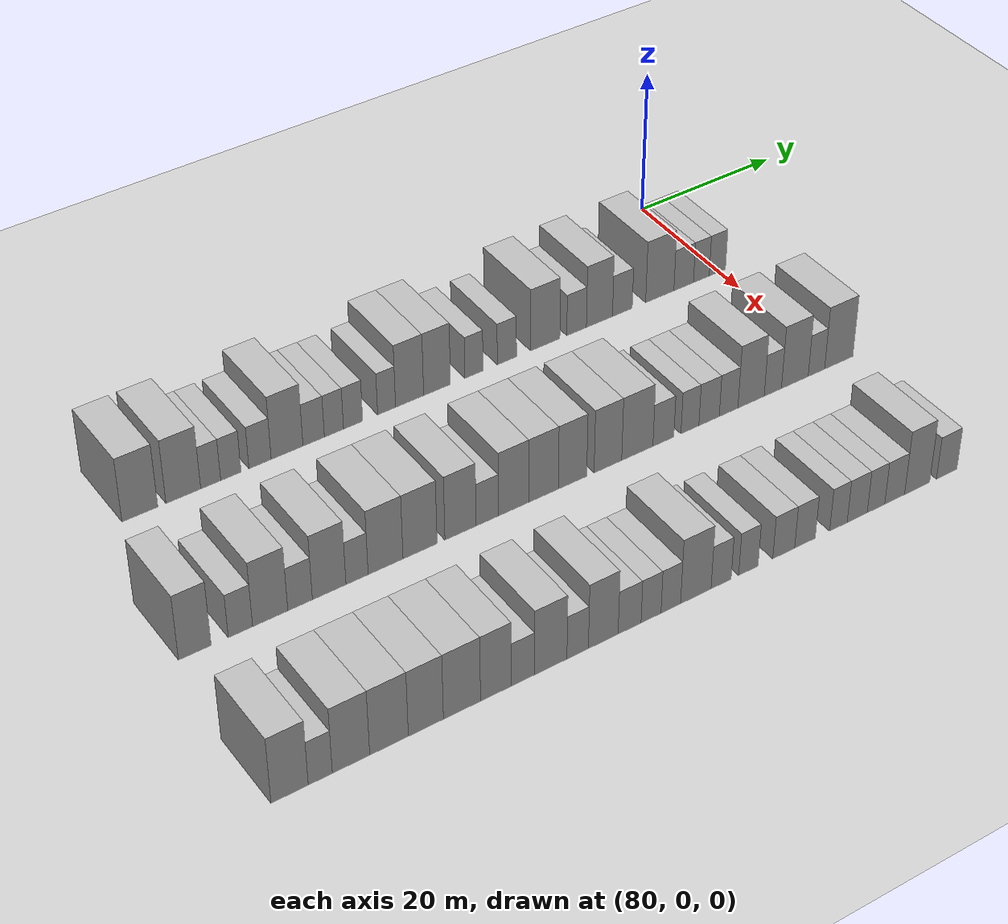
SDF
<sdf version="1.6">
 <world name="default">
  <include>
   <name>ground_plane_2</name>
   <uri>model://HANNAS_ground_plane</uri>
   <pose>100 0 0  0 0 0</pose>
  </include>
  <model name="building_653">
   <static>1</static>
   <pose>91.0000 -79.4389 0 0.000000 0.000000 0.000000</pose>
   <link name="link">
    <pose>0 0 4.50 0 0 0</pose>
    <collision name="collision"><geometry><box><size>10.0000 4.3589 9.0000</size></box></geometry></collision>
    <visual name="visual">
     <cast_shadows>0</cast_shadows>
     <geometry><box><size>10.0000 4.3589 9.0000</size></box></geometry>
     <material>
      <script>
       <uri>model://HANNAS_wall/materials/scripts</uri>
       <uri>model://HANNAS_wall/materials/textures</uri>
       <name>vrc/HANNAS_wall</name>
      </script>
     </material>
    </visual>
   </link>
  </model>
  <model name="building_654">
   <static>1</static>
   <pose>91.0000 -74.1063 0 0.000000 0.000000 0.000000</pose>
   <link name="link">
    <pose>0 0 4.50 0 0 0</pose>
    <collision name="collision"><geometry><box><size>10.0000 4.3062 9.0000</size></box></geometry></collision>
    <visual name="visual">
     <cast_shadows>0</cast_shadows>
     <geometry><box><size>10.0000 4.3062 9.0000</size></box></geometry>
     <material>
      <script>
       <uri>model://HANNAS_wall/materials/scripts</uri>
       <uri>model://HANNAS_wall/materials/textures</uri>
       <name>vrc/HANNAS_wall</name>
      </script>
     </material>
    </visual>
   </link>
  </model>
  <model name="building_655">
   <static>1</static>
   <pose>91.0000 -70.7050 0 0.000000 0.000000 0.000000</pose>
   <link name="link">
    <pose>0 0 3.00 0 0 0</pose>
    <collision name="collision"><geometry><box><size>10.0000 2.4964 6.0000</size></box></geometry></collision>
    <visual name="visual">
     <cast_shadows>0</cast_shadows>
     <geometry><box><size>10.0000 2.4964 6.0000</size></box></geometry>
     <material>
      <script>
       <uri>model://HANNAS_wall/materials/scripts</uri>
       <uri>model://HANNAS_wall/materials/textures</uri>
       <name>vrc/HANNAS_wall</name>
      </script>
     </material>
    </visual>
   </link>
  </model>
  <model name="building_656">
   <static>1</static>
   <pose>91.0000 -68.1744 0 0.000000 0.000000 0.000000</pose>
   <link name="link">
    <pose>0 0 3.00 0 0 0</pose>
    <collision name="collision"><geometry><box><size>10.0000 2.5649 6.0000</size></box></geometry></collision>
    <visual name="visual">
     <cast_shadows>0</cast_shadows>
     <geometry><box><size>10.0000 2.5649 6.0000</size></box></geometry>
     <material>
      <script>
       <uri>model://HANNAS_wall/materials/scripts</uri>
       <uri>model://HANNAS_wall/materials/textures</uri>
       <name>vrc/HANNAS_wall</name>
      </script>
     </material>
    </visual>
   </link>
  </model>
  <model name="building_657">
   <static>1</static>
   <pose>91.0000 -64.4742 0 0.000000 0.000000 0.000000</pose>
   <link name="link">
    <pose>0 0 3.00 0 0 0</pose>
    <collision name="collision"><geometry><box><size>10.0000 2.8355 6.0000</size></box></geometry></collision>
    <visual name="visual">
     <cast_shadows>0</cast_shadows>
     <geometry><box><size>10.0000 2.8355 6.0000</size></box></geometry>
     <material>
      <script>
       <uri>model://HANNAS_wall/materials/scripts</uri>
       <uri>model://HANNAS_wall/materials/textures</uri>
       <name>vrc/HANNAS_wall</name>
      </script>
     </material>
    </visual>
   </link>
  </model>
  <model name="building_658">
   <static>1</static>
   <pose>91.0000 -61.0054 0 0.000000 0.000000 0.000000</pose>
   <link name="link">
    <pose>0 0 4.50 0 0 0</pose>
    <collision name="collision"><geometry><box><size>10.0000 4.1021 9.0000</size></box></geometry></collision>
    <visual name="visual">
     <cast_shadows>0</cast_shadows>
     <geometry><box><size>10.0000 4.1021 9.0000</size></box></geometry>
     <material>
      <script>
       <uri>model://HANNAS_wall/materials/scripts</uri>
       <uri>model://HANNAS_wall/materials/textures</uri>
       <name>vrc/HANNAS_wall</name>
      </script>
     </material>
    </visual>
   </link>
  </model>
  <model name="building_659">
   <static>1</static>
   <pose>91.0000 -57.5598 0 0.000000 0.000000 0.000000</pose>
   <link name="link">
    <pose>0 0 3.00 0 0 0</pose>
    <collision name="collision"><geometry><box><size>10.0000 2.7892 6.0000</size></box></geometry></collision>
    <visual name="visual">
     <cast_shadows>0</cast_shadows>
     <geometry><box><size>10.0000 2.7892 6.0000</size></box></geometry>
     <material>
      <script>
       <uri>model://HANNAS_wall/materials/scripts</uri>
       <uri>model://HANNAS_wall/materials/textures</uri>
       <name>vrc/HANNAS_wall</name>
      </script>
     </material>
    </visual>
   </link>
  </model>
  <model name="building_660">
   <static>1</static>
   <pose>91.0000 -54.9086 0 0.000000 0.000000 0.000000</pose>
   <link name="link">
    <pose>0 0 3.00 0 0 0</pose>
    <collision name="collision"><geometry><box><size>10.0000 2.5132 6.0000</size></box></geometry></collision>
    <visual name="visual">
     <cast_shadows>0</cast_shadows>
     <geometry><box><size>10.0000 2.5132 6.0000</size></box></geometry>
     <material>
      <script>
       <uri>model://HANNAS_wall/materials/scripts</uri>
       <uri>model://HANNAS_wall/materials/textures</uri>
       <name>vrc/HANNAS_wall</name>
      </script>
     </material>
    </visual>
   </link>
  </model>
  <model name="building_661">
   <static>1</static>
   <pose>91.0000 -52.3867 0 0.000000 0.000000 0.000000</pose>
   <link name="link">
    <pose>0 0 3.00 0 0 0</pose>
    <collision name="collision"><geometry><box><size>10.0000 2.5305 6.0000</size></box></geometry></collision>
    <visual name="visual">
     <cast_shadows>0</cast_shadows>
     <geometry><box><size>10.0000 2.5305 6.0000</size></box></geometry>
     <material>
      <script>
       <uri>model://HANNAS_wall/materials/scripts</uri>
       <uri>model://HANNAS_wall/materials/textures</uri>
       <name>vrc/HANNAS_wall</name>
      </script>
     </material>
    </visual>
   </link>
  </model>
  <model name="building_662">
   <static>1</static>
   <pose>91.0000 -47.9176 0 0.000000 0.000000 0.000000</pose>
   <link name="link">
    <pose>0 0 3.00 0 0 0</pose>
    <collision name="collision"><geometry><box><size>10.0000 2.4077 6.0000</size></box></geometry></collision>
    <visual name="visual">
     <cast_shadows>0</cast_shadows>
     <geometry><box><size>10.0000 2.4077 6.0000</size></box></geometry>
     <material>
      <script>
       <uri>model://HANNAS_wall/materials/scripts</uri>
       <uri>model://HANNAS_wall/materials/textures</uri>
       <name>vrc/HANNAS_wall</name>
      </script>
     </material>
    </visual>
   </link>
  </model>
  <model name="building_663">
   <static>1</static>
   <pose>91.0000 -44.8125 0 0.000000 0.000000 0.000000</pose>
   <link name="link">
    <pose>0 0 4.50 0 0 0</pose>
    <collision name="collision"><geometry><box><size>10.0000 3.8024 9.0000</size></box></geometry></collision>
    <visual name="visual">
     <cast_shadows>0</cast_shadows>
     <geometry><box><size>10.0000 3.8024 9.0000</size></box></geometry>
     <material>
      <script>
       <uri>model://HANNAS_wall/materials/scripts</uri>
       <uri>model://HANNAS_wall/materials/textures</uri>
       <name>vrc/HANNAS_wall</name>
      </script>
     </material>
    </visual>
   </link>
  </model>
  <model name="building_664">
   <static>1</static>
   <pose>91.0000 -41.0761 0 0.000000 0.000000 0.000000</pose>
   <link name="link">
    <pose>0 0 4.50 0 0 0</pose>
    <collision name="collision"><geometry><box><size>10.0000 3.6705 9.0000</size></box></geometry></collision>
    <visual name="visual">
     <cast_shadows>0</cast_shadows>
     <geometry><box><size>10.0000 3.6705 9.0000</size></box></geometry>
     <material>
      <script>
       <uri>model://HANNAS_wall/materials/scripts</uri>
       <uri>model://HANNAS_wall/materials/textures</uri>
       <name>vrc/HANNAS_wall</name>
      </script>
     </material>
    </visual>
   </link>
  </model>
  <model name="building_665">
   <static>1</static>
   <pose>91.0000 -35.9853 0 0.000000 0.000000 0.000000</pose>
   <link name="link">
    <pose>0 0 3.00 0 0 0</pose>
    <collision name="collision"><geometry><box><size>10.0000 2.5110 6.0000</size></box></geometry></collision>
    <visual name="visual">
     <cast_shadows>0</cast_shadows>
     <geometry><box><size>10.0000 2.5110 6.0000</size></box></geometry>
     <material>
      <script>
       <uri>model://HANNAS_wall/materials/scripts</uri>
       <uri>model://HANNAS_wall/materials/textures</uri>
       <name>vrc/HANNAS_wall</name>
      </script>
     </material>
    </visual>
   </link>
  </model>
  <model name="building_666">
   <static>1</static>
   <pose>91.0000 -31.3787 0 0.000000 0.000000 0.000000</pose>
   <link name="link">
    <pose>0 0 3.00 0 0 0</pose>
    <collision name="collision"><geometry><box><size>10.0000 2.7020 6.0000</size></box></geometry></collision>
    <visual name="visual">
     <cast_shadows>0</cast_shadows>
     <geometry><box><size>10.0000 2.7020 6.0000</size></box></geometry>
     <material>
      <script>
       <uri>model://HANNAS_wall/materials/scripts</uri>
       <uri>model://HANNAS_wall/materials/textures</uri>
       <name>vrc/HANNAS_wall</name>
      </script>
     </material>
    </visual>
   </link>
  </model>
  <model name="building_667">
   <static>1</static>
   <pose>91.0000 -25.9276 0 0.000000 0.000000 0.000000</pose>
   <link name="link">
    <pose>0 0 4.50 0 0 0</pose>
    <collision name="collision"><geometry><box><size>10.0000 4.2004 9.0000</size></box></geometry></collision>
    <visual name="visual">
     <cast_shadows>0</cast_shadows>
     <geometry><box><size>10.0000 4.2004 9.0000</size></box></geometry>
     <material>
      <script>
       <uri>model://HANNAS_wall/materials/scripts</uri>
       <uri>model://HANNAS_wall/materials/textures</uri>
       <name>vrc/HANNAS_wall</name>
      </script>
     </material>
    </visual>
   </link>
  </model>
  <model name="building_668">
   <static>1</static>
   <pose>91.0000 -21.4055 0 0.000000 0.000000 0.000000</pose>
   <link name="link">
    <pose>0 0 3.00 0 0 0</pose>
    <collision name="collision"><geometry><box><size>10.0000 2.8437 6.0000</size></box></geometry></collision>
    <visual name="visual">
     <cast_shadows>0</cast_shadows>
     <geometry><box><size>10.0000 2.8437 6.0000</size></box></geometry>
     <material>
      <script>
       <uri>model://HANNAS_wall/materials/scripts</uri>
       <uri>model://HANNAS_wall/materials/textures</uri>
       <name>vrc/HANNAS_wall</name>
      </script>
     </material>
    </visual>
   </link>
  </model>
  <model name="building_669">
   <static>1</static>
   <pose>91.0000 -18.0693 0 0.000000 0.000000 0.000000</pose>
   <link name="link">
    <pose>0 0 4.50 0 0 0</pose>
    <collision name="collision"><geometry><box><size>10.0000 3.8287 9.0000</size></box></geometry></collision>
    <visual name="visual">
     <cast_shadows>0</cast_shadows>
     <geometry><box><size>10.0000 3.8287 9.0000</size></box></geometry>
     <material>
      <script>
       <uri>model://HANNAS_wall/materials/scripts</uri>
       <uri>model://HANNAS_wall/materials/textures</uri>
       <name>vrc/HANNAS_wall</name>
      </script>
     </material>
    </visual>
   </link>
  </model>
  <model name="building_670">
   <static>1</static>
   <pose>91.0000 -14.6945 0 0.000000 0.000000 0.000000</pose>
   <link name="link">
    <pose>0 0 3.00 0 0 0</pose>
    <collision name="collision"><geometry><box><size>10.0000 2.9210 6.0000</size></box></geometry></collision>
    <visual name="visual">
     <cast_shadows>0</cast_shadows>
     <geometry><box><size>10.0000 2.9210 6.0000</size></box></geometry>
     <material>
      <script>
       <uri>model://HANNAS_wall/materials/scripts</uri>
       <uri>model://HANNAS_wall/materials/textures</uri>
       <name>vrc/HANNAS_wall</name>
      </script>
     </material>
    </visual>
   </link>
  </model>
  <model name="building_671">
   <static>1</static>
   <pose>91.0000 -9.1080 0 0.000000 0.000000 0.000000</pose>
   <link name="link">
    <pose>0 0 4.50 0 0 0</pose>
    <collision name="collision"><geometry><box><size>10.0000 4.2520 9.0000</size></box></geometry></collision>
    <visual name="visual">
     <cast_shadows>0</cast_shadows>
     <geometry><box><size>10.0000 4.2520 9.0000</size></box></geometry>
     <material>
      <script>
       <uri>model://HANNAS_wall/materials/scripts</uri>
       <uri>model://HANNAS_wall/materials/textures</uri>
       <name>vrc/HANNAS_wall</name>
      </script>
     </material>
    </visual>
   </link>
  </model>
  <model name="building_672">
   <static>1</static>
   <pose>91.0000 -5.4977 0 0.000000 0.000000 0.000000</pose>
   <link name="link">
    <pose>0 0 3.00 0 0 0</pose>
    <collision name="collision"><geometry><box><size>10.0000 2.9686 6.0000</size></box></geometry></collision>
    <visual name="visual">
     <cast_shadows>0</cast_shadows>
     <geometry><box><size>10.0000 2.9686 6.0000</size></box></geometry>
     <material>
      <script>
       <uri>model://HANNAS_wall/materials/scripts</uri>
       <uri>model://HANNAS_wall/materials/textures</uri>
       <name>vrc/HANNAS_wall</name>
      </script>
     </material>
    </visual>
   </link>
  </model>
  <model name="building_673">
   <static>1</static>
   <pose>91.0000 -2.8036 0 0.000000 0.000000 0.000000</pose>
   <link name="link">
    <pose>0 0 3.00 0 0 0</pose>
    <collision name="collision"><geometry><box><size>10.0000 2.4197 6.0000</size></box></geometry></collision>
    <visual name="visual">
     <cast_shadows>0</cast_shadows>
     <geometry><box><size>10.0000 2.4197 6.0000</size></box></geometry>
     <material>
      <script>
       <uri>model://HANNAS_wall/materials/scripts</uri>
       <uri>model://HANNAS_wall/materials/textures</uri>
       <name>vrc/HANNAS_wall</name>
      </script>
     </material>
    </visual>
   </link>
  </model>
  <model name="building_674">
   <static>1</static>
   <pose>91.0000 -0.3408 0 0.000000 0.000000 0.000000</pose>
   <link name="link">
    <pose>0 0 3.00 0 0 0</pose>
    <collision name="collision"><geometry><box><size>10.0000 2.5057 6.0000</size></box></geometry></collision>
    <visual name="visual">
     <cast_shadows>0</cast_shadows>
     <geometry><box><size>10.0000 2.5057 6.0000</size></box></geometry>
     <material>
      <script>
       <uri>model://HANNAS_wall/materials/scripts</uri>
       <uri>model://HANNAS_wall/materials/textures</uri>
       <name>vrc/HANNAS_wall</name>
      </script>
     </material>
    </visual>
   </link>
  </model>
  <model name="building_834">
   <static>1</static>
   <pose>113.0000 -84.4279 0 0.000000 0.000000 0.000000</pose>
   <link name="link">
    <pose>0 0 4.50 0 0 0</pose>
    <collision name="collision"><geometry><box><size>10.0000 3.7770 9.0000</size></box></geometry></collision>
    <visual name="visual">
     <cast_shadows>0</cast_shadows>
     <geometry><box><size>10.0000 3.7770 9.0000</size></box></geometry>
     <material>
      <script>
       <uri>model://HANNAS_wall/materials/scripts</uri>
       <uri>model://HANNAS_wall/materials/textures</uri>
       <name>vrc/HANNAS_wall</name>
      </script>
     </material>
    </visual>
   </link>
  </model>
  <model name="building_835">
   <static>1</static>
   <pose>113.0000 -79.1073 0 0.000000 0.000000 0.000000</pose>
   <link name="link">
    <pose>0 0 3.00 0 0 0</pose>
    <collision name="collision"><geometry><box><size>10.0000 2.8643 6.0000</size></box></geometry></collision>
    <visual name="visual">
     <cast_shadows>0</cast_shadows>
     <geometry><box><size>10.0000 2.8643 6.0000</size></box></geometry>
     <material>
      <script>
       <uri>model://HANNAS_wall/materials/scripts</uri>
       <uri>model://HANNAS_wall/materials/textures</uri>
       <name>vrc/HANNAS_wall</name>
      </script>
     </material>
    </visual>
   </link>
  </model>
  <model name="building_836">
   <static>1</static>
   <pose>113.0000 -75.5823 0 0.000000 0.000000 0.000000</pose>
   <link name="link">
    <pose>0 0 4.50 0 0 0</pose>
    <collision name="collision"><geometry><box><size>10.0000 4.1857 9.0000</size></box></geometry></collision>
    <visual name="visual">
     <cast_shadows>0</cast_shadows>
     <geometry><box><size>10.0000 4.1857 9.0000</size></box></geometry>
     <material>
      <script>
       <uri>model://HANNAS_wall/materials/scripts</uri>
       <uri>model://HANNAS_wall/materials/textures</uri>
       <name>vrc/HANNAS_wall</name>
      </script>
     </material>
    </visual>
   </link>
  </model>
  <model name="building_837">
   <static>1</static>
   <pose>113.0000 -72.0076 0 0.000000 0.000000 0.000000</pose>
   <link name="link">
    <pose>0 0 3.00 0 0 0</pose>
    <collision name="collision"><geometry><box><size>10.0000 2.9637 6.0000</size></box></geometry></collision>
    <visual name="visual">
     <cast_shadows>0</cast_shadows>
     <geometry><box><size>10.0000 2.9637 6.0000</size></box></geometry>
     <material>
      <script>
       <uri>model://HANNAS_wall/materials/scripts</uri>
       <uri>model://HANNAS_wall/materials/textures</uri>
       <name>vrc/HANNAS_wall</name>
      </script>
     </material>
    </visual>
   </link>
  </model>
  <model name="building_838">
   <static>1</static>
   <pose>113.0000 -68.4787 0 0.000000 0.000000 0.000000</pose>
   <link name="link">
    <pose>0 0 4.50 0 0 0</pose>
    <collision name="collision"><geometry><box><size>10.0000 4.0940 9.0000</size></box></geometry></collision>
    <visual name="visual">
     <cast_shadows>0</cast_shadows>
     <geometry><box><size>10.0000 4.0940 9.0000</size></box></geometry>
     <material>
      <script>
       <uri>model://HANNAS_wall/materials/scripts</uri>
       <uri>model://HANNAS_wall/materials/textures</uri>
       <name>vrc/HANNAS_wall</name>
      </script>
     </material>
    </visual>
   </link>
  </model>
  <model name="building_839">
   <static>1</static>
   <pose>113.0000 -65.0657 0 0.000000 0.000000 0.000000</pose>
   <link name="link">
    <pose>0 0 3.00 0 0 0</pose>
    <collision name="collision"><geometry><box><size>10.0000 2.7322 6.0000</size></box></geometry></collision>
    <visual name="visual">
     <cast_shadows>0</cast_shadows>
     <geometry><box><size>10.0000 2.7322 6.0000</size></box></geometry>
     <material>
      <script>
       <uri>model://HANNAS_wall/materials/scripts</uri>
       <uri>model://HANNAS_wall/materials/textures</uri>
       <name>vrc/HANNAS_wall</name>
      </script>
     </material>
    </visual>
   </link>
  </model>
  <model name="building_840">
   <static>1</static>
   <pose>113.0000 -61.5240 0 0.000000 0.000000 0.000000</pose>
   <link name="link">
    <pose>0 0 4.50 0 0 0</pose>
    <collision name="collision"><geometry><box><size>10.0000 4.3511 9.0000</size></box></geometry></collision>
    <visual name="visual">
     <cast_shadows>0</cast_shadows>
     <geometry><box><size>10.0000 4.3511 9.0000</size></box></geometry>
     <material>
      <script>
       <uri>model://HANNAS_wall/materials/scripts</uri>
       <uri>model://HANNAS_wall/materials/textures</uri>
       <name>vrc/HANNAS_wall</name>
      </script>
     </material>
    </visual>
   </link>
  </model>
  <model name="building_841">
   <static>1</static>
   <pose>113.0000 -57.1948 0 0.000000 0.000000 0.000000</pose>
   <link name="link">
    <pose>0 0 4.50 0 0 0</pose>
    <collision name="collision"><geometry><box><size>10.0000 4.3075 9.0000</size></box></geometry></collision>
    <visual name="visual">
     <cast_shadows>0</cast_shadows>
     <geometry><box><size>10.0000 4.3075 9.0000</size></box></geometry>
     <material>
      <script>
       <uri>model://HANNAS_wall/materials/scripts</uri>
       <uri>model://HANNAS_wall/materials/textures</uri>
       <name>vrc/HANNAS_wall</name>
      </script>
     </material>
    </visual>
   </link>
  </model>
  <model name="building_842">
   <static>1</static>
   <pose>113.0000 -52.0373 0 0.000000 0.000000 0.000000</pose>
   <link name="link">
    <pose>0 0 4.50 0 0 0</pose>
    <collision name="collision"><geometry><box><size>10.0000 4.0074 9.0000</size></box></geometry></collision>
    <visual name="visual">
     <cast_shadows>0</cast_shadows>
     <geometry><box><size>10.0000 4.0074 9.0000</size></box></geometry>
     <material>
      <script>
       <uri>model://HANNAS_wall/materials/scripts</uri>
       <uri>model://HANNAS_wall/materials/textures</uri>
       <name>vrc/HANNAS_wall</name>
      </script>
     </material>
    </visual>
   </link>
  </model>
  <model name="building_843">
   <static>1</static>
   <pose>113.0000 -48.5741 0 0.000000 0.000000 0.000000</pose>
   <link name="link">
    <pose>0 0 3.00 0 0 0</pose>
    <collision name="collision"><geometry><box><size>10.0000 2.9190 6.0000</size></box></geometry></collision>
    <visual name="visual">
     <cast_shadows>0</cast_shadows>
     <geometry><box><size>10.0000 2.9190 6.0000</size></box></geometry>
     <material>
      <script>
       <uri>model://HANNAS_wall/materials/scripts</uri>
       <uri>model://HANNAS_wall/materials/textures</uri>
       <name>vrc/HANNAS_wall</name>
      </script>
     </material>
    </visual>
   </link>
  </model>
  <model name="building_844">
   <static>1</static>
   <pose>113.0000 -45.1214 0 0.000000 0.000000 0.000000</pose>
   <link name="link">
    <pose>0 0 4.50 0 0 0</pose>
    <collision name="collision"><geometry><box><size>10.0000 3.9864 9.0000</size></box></geometry></collision>
    <visual name="visual">
     <cast_shadows>0</cast_shadows>
     <geometry><box><size>10.0000 3.9864 9.0000</size></box></geometry>
     <material>
      <script>
       <uri>model://HANNAS_wall/materials/scripts</uri>
       <uri>model://HANNAS_wall/materials/textures</uri>
       <name>vrc/HANNAS_wall</name>
      </script>
     </material>
    </visual>
   </link>
  </model>
  <model name="building_845">
   <static>1</static>
   <pose>113.0000 -41.1678 0 0.000000 0.000000 0.000000</pose>
   <link name="link">
    <pose>0 0 4.50 0 0 0</pose>
    <collision name="collision"><geometry><box><size>10.0000 3.9206 9.0000</size></box></geometry></collision>
    <visual name="visual">
     <cast_shadows>0</cast_shadows>
     <geometry><box><size>10.0000 3.9206 9.0000</size></box></geometry>
     <material>
      <script>
       <uri>model://HANNAS_wall/materials/scripts</uri>
       <uri>model://HANNAS_wall/materials/textures</uri>
       <name>vrc/HANNAS_wall</name>
      </script>
     </material>
    </visual>
   </link>
  </model>
  <model name="building_846">
   <static>1</static>
   <pose>113.0000 -37.2967 0 0.000000 0.000000 0.000000</pose>
   <link name="link">
    <pose>0 0 4.50 0 0 0</pose>
    <collision name="collision"><geometry><box><size>10.0000 3.8217 9.0000</size></box></geometry></collision>
    <visual name="visual">
     <cast_shadows>0</cast_shadows>
     <geometry><box><size>10.0000 3.8217 9.0000</size></box></geometry>
     <material>
      <script>
       <uri>model://HANNAS_wall/materials/scripts</uri>
       <uri>model://HANNAS_wall/materials/textures</uri>
       <name>vrc/HANNAS_wall</name>
      </script>
     </material>
    </visual>
   </link>
  </model>
  <model name="building_847">
   <static>1</static>
   <pose>113.0000 -32.4959 0 0.000000 0.000000 0.000000</pose>
   <link name="link">
    <pose>0 0 4.50 0 0 0</pose>
    <collision name="collision"><geometry><box><size>10.0000 3.7797 9.0000</size></box></geometry></collision>
    <visual name="visual">
     <cast_shadows>0</cast_shadows>
     <geometry><box><size>10.0000 3.7797 9.0000</size></box></geometry>
     <material>
      <script>
       <uri>model://HANNAS_wall/materials/scripts</uri>
       <uri>model://HANNAS_wall/materials/textures</uri>
       <name>vrc/HANNAS_wall</name>
      </script>
     </material>
    </visual>
   </link>
  </model>
  <model name="building_848">
   <static>1</static>
   <pose>113.0000 -28.4434 0 0.000000 0.000000 0.000000</pose>
   <link name="link">
    <pose>0 0 4.50 0 0 0</pose>
    <collision name="collision"><geometry><box><size>10.0000 4.3253 9.0000</size></box></geometry></collision>
    <visual name="visual">
     <cast_shadows>0</cast_shadows>
     <geometry><box><size>10.0000 4.3253 9.0000</size></box></geometry>
     <material>
      <script>
       <uri>model://HANNAS_wall/materials/scripts</uri>
       <uri>model://HANNAS_wall/materials/textures</uri>
       <name>vrc/HANNAS_wall</name>
      </script>
     </material>
    </visual>
   </link>
  </model>
  <model name="building_849">
   <static>1</static>
   <pose>113.0000 -24.8127 0 0.000000 0.000000 0.000000</pose>
   <link name="link">
    <pose>0 0 3.00 0 0 0</pose>
    <collision name="collision"><geometry><box><size>10.0000 2.9361 6.0000</size></box></geometry></collision>
    <visual name="visual">
     <cast_shadows>0</cast_shadows>
     <geometry><box><size>10.0000 2.9361 6.0000</size></box></geometry>
     <material>
      <script>
       <uri>model://HANNAS_wall/materials/scripts</uri>
       <uri>model://HANNAS_wall/materials/textures</uri>
       <name>vrc/HANNAS_wall</name>
      </script>
     </material>
    </visual>
   </link>
  </model>
  <model name="building_850">
   <static>1</static>
   <pose>113.0000 -21.0738 0 0.000000 0.000000 0.000000</pose>
   <link name="link">
    <pose>0 0 3.00 0 0 0</pose>
    <collision name="collision"><geometry><box><size>10.0000 2.5419 6.0000</size></box></geometry></collision>
    <visual name="visual">
     <cast_shadows>0</cast_shadows>
     <geometry><box><size>10.0000 2.5419 6.0000</size></box></geometry>
     <material>
      <script>
       <uri>model://HANNAS_wall/materials/scripts</uri>
       <uri>model://HANNAS_wall/materials/textures</uri>
       <name>vrc/HANNAS_wall</name>
      </script>
     </material>
    </visual>
   </link>
  </model>
  <model name="building_851">
   <static>1</static>
   <pose>113.0000 -18.3464 0 0.000000 0.000000 0.000000</pose>
   <link name="link">
    <pose>0 0 3.00 0 0 0</pose>
    <collision name="collision"><geometry><box><size>10.0000 2.9127 6.0000</size></box></geometry></collision>
    <visual name="visual">
     <cast_shadows>0</cast_shadows>
     <geometry><box><size>10.0000 2.9127 6.0000</size></box></geometry>
     <material>
      <script>
       <uri>model://HANNAS_wall/materials/scripts</uri>
       <uri>model://HANNAS_wall/materials/textures</uri>
       <name>vrc/HANNAS_wall</name>
      </script>
     </material>
    </visual>
   </link>
  </model>
  <model name="building_852">
   <static>1</static>
   <pose>113.0000 -15.5474 0 0.000000 0.000000 0.000000</pose>
   <link name="link">
    <pose>0 0 3.00 0 0 0</pose>
    <collision name="collision"><geometry><box><size>10.0000 2.6853 6.0000</size></box></geometry></collision>
    <visual name="visual">
     <cast_shadows>0</cast_shadows>
     <geometry><box><size>10.0000 2.6853 6.0000</size></box></geometry>
     <material>
      <script>
       <uri>model://HANNAS_wall/materials/scripts</uri>
       <uri>model://HANNAS_wall/materials/textures</uri>
       <name>vrc/HANNAS_wall</name>
      </script>
     </material>
    </visual>
   </link>
  </model>
  <model name="building_853">
   <static>1</static>
   <pose>113.0000 -12.2888 0 0.000000 0.000000 0.000000</pose>
   <link name="link">
    <pose>0 0 4.50 0 0 0</pose>
    <collision name="collision"><geometry><box><size>10.0000 3.8318 9.0000</size></box></geometry></collision>
    <visual name="visual">
     <cast_shadows>0</cast_shadows>
     <geometry><box><size>10.0000 3.8318 9.0000</size></box></geometry>
     <material>
      <script>
       <uri>model://HANNAS_wall/materials/scripts</uri>
       <uri>model://HANNAS_wall/materials/textures</uri>
       <name>vrc/HANNAS_wall</name>
      </script>
     </material>
    </visual>
   </link>
  </model>
  <model name="building_854">
   <static>1</static>
   <pose>113.0000 -9.1088 0 0.000000 0.000000 0.000000</pose>
   <link name="link">
    <pose>0 0 3.00 0 0 0</pose>
    <collision name="collision"><geometry><box><size>10.0000 2.5282 6.0000</size></box></geometry></collision>
    <visual name="visual">
     <cast_shadows>0</cast_shadows>
     <geometry><box><size>10.0000 2.5282 6.0000</size></box></geometry>
     <material>
      <script>
       <uri>model://HANNAS_wall/materials/scripts</uri>
       <uri>model://HANNAS_wall/materials/textures</uri>
       <name>vrc/HANNAS_wall</name>
      </script>
     </material>
    </visual>
   </link>
  </model>
  <model name="building_855">
   <static>1</static>
   <pose>113.0000 -5.8590 0 0.000000 0.000000 0.000000</pose>
   <link name="link">
    <pose>0 0 4.50 0 0 0</pose>
    <collision name="collision"><geometry><box><size>10.0000 3.9715 9.0000</size></box></geometry></collision>
    <visual name="visual">
     <cast_shadows>0</cast_shadows>
     <geometry><box><size>10.0000 3.9715 9.0000</size></box></geometry>
     <material>
      <script>
       <uri>model://HANNAS_wall/materials/scripts</uri>
       <uri>model://HANNAS_wall/materials/textures</uri>
       <name>vrc/HANNAS_wall</name>
      </script>
     </material>
    </visual>
   </link>
  </model>
  <model name="building_856">
   <static>1</static>
   <pose>113.0000 -2.6428 0 0.000000 0.000000 0.000000</pose>
   <link name="link">
    <pose>0 0 3.00 0 0 0</pose>
    <collision name="collision"><geometry><box><size>10.0000 2.4609 6.0000</size></box></geometry></collision>
    <visual name="visual">
     <cast_shadows>0</cast_shadows>
     <geometry><box><size>10.0000 2.4609 6.0000</size></box></geometry>
     <material>
      <script>
       <uri>model://HANNAS_wall/materials/scripts</uri>
       <uri>model://HANNAS_wall/materials/textures</uri>
       <name>vrc/HANNAS_wall</name>
      </script>
     </material>
    </visual>
   </link>
  </model>
  <model name="building_857">
   <static>1</static>
   <pose>113.0000 0.7224 0 0.000000 0.000000 0.000000</pose>
   <link name="link">
    <pose>0 0 4.50 0 0 0</pose>
    <collision name="collision"><geometry><box><size>10.0000 4.2695 9.0000</size></box></geometry></collision>
    <visual name="visual">
     <cast_shadows>0</cast_shadows>
     <geometry><box><size>10.0000 4.2695 9.0000</size></box></geometry>
     <material>
      <script>
       <uri>model://HANNAS_wall/materials/scripts</uri>
       <uri>model://HANNAS_wall/materials/textures</uri>
       <name>vrc/HANNAS_wall</name>
      </script>
     </material>
    </visual>
   </link>
  </model>
  <model name="building_1032">
   <static>1</static>
   <pose>135.0000 -85.8491 0 0.000000 0.000000 0.000000</pose>
   <link name="link">
    <pose>0 0 4.50 0 0 0</pose>
    <collision name="collision"><geometry><box><size>10.0000 4.1418 9.0000</size></box></geometry></collision>
    <visual name="visual">
     <cast_shadows>0</cast_shadows>
     <geometry><box><size>10.0000 4.1418 9.0000</size></box></geometry>
     <material>
      <script>
       <uri>model://HANNAS_wall/materials/scripts</uri>
       <uri>model://HANNAS_wall/materials/textures</uri>
       <name>vrc/HANNAS_wall</name>
      </script>
     </material>
    </visual>
   </link>
  </model>
  <model name="building_1033">
   <static>1</static>
   <pose>135.0000 -82.4266 0 0.000000 0.000000 0.000000</pose>
   <link name="link">
    <pose>0 0 3.00 0 0 0</pose>
    <collision name="collision"><geometry><box><size>10.0000 2.7033 6.0000</size></box></geometry></collision>
    <visual name="visual">
     <cast_shadows>0</cast_shadows>
     <geometry><box><size>10.0000 2.7033 6.0000</size></box></geometry>
     <material>
      <script>
       <uri>model://HANNAS_wall/materials/scripts</uri>
       <uri>model://HANNAS_wall/materials/textures</uri>
       <name>vrc/HANNAS_wall</name>
      </script>
     </material>
    </visual>
   </link>
  </model>
  <model name="building_1034">
   <static>1</static>
   <pose>135.0000 -78.9526 0 0.000000 0.000000 0.000000</pose>
   <link name="link">
    <pose>0 0 4.50 0 0 0</pose>
    <collision name="collision"><geometry><box><size>10.0000 4.2447 9.0000</size></box></geometry></collision>
    <visual name="visual">
     <cast_shadows>0</cast_shadows>
     <geometry><box><size>10.0000 4.2447 9.0000</size></box></geometry>
     <material>
      <script>
       <uri>model://HANNAS_wall/materials/scripts</uri>
       <uri>model://HANNAS_wall/materials/textures</uri>
       <name>vrc/HANNAS_wall</name>
      </script>
     </material>
    </visual>
   </link>
  </model>
  <model name="building_1035">
   <static>1</static>
   <pose>135.0000 -74.5987 0 0.000000 0.000000 0.000000</pose>
   <link name="link">
    <pose>0 0 4.50 0 0 0</pose>
    <collision name="collision"><geometry><box><size>10.0000 4.4632 9.0000</size></box></geometry></collision>
    <visual name="visual">
     <cast_shadows>0</cast_shadows>
     <geometry><box><size>10.0000 4.4632 9.0000</size></box></geometry>
     <material>
      <script>
       <uri>model://HANNAS_wall/materials/scripts</uri>
       <uri>model://HANNAS_wall/materials/textures</uri>
       <name>vrc/HANNAS_wall</name>
      </script>
     </material>
    </visual>
   </link>
  </model>
  <model name="building_1036">
   <static>1</static>
   <pose>135.0000 -70.3127 0 0.000000 0.000000 0.000000</pose>
   <link name="link">
    <pose>0 0 4.50 0 0 0</pose>
    <collision name="collision"><geometry><box><size>10.0000 4.1087 9.0000</size></box></geometry></collision>
    <visual name="visual">
     <cast_shadows>0</cast_shadows>
     <geometry><box><size>10.0000 4.1087 9.0000</size></box></geometry>
     <material>
      <script>
       <uri>model://HANNAS_wall/materials/scripts</uri>
       <uri>model://HANNAS_wall/materials/textures</uri>
       <name>vrc/HANNAS_wall</name>
      </script>
     </material>
    </visual>
   </link>
  </model>
  <model name="building_1037">
   <static>1</static>
   <pose>135.0000 -66.0519 0 0.000000 0.000000 0.000000</pose>
   <link name="link">
    <pose>0 0 4.50 0 0 0</pose>
    <collision name="collision"><geometry><box><size>10.0000 4.4128 9.0000</size></box></geometry></collision>
    <visual name="visual">
     <cast_shadows>0</cast_shadows>
     <geometry><box><size>10.0000 4.4128 9.0000</size></box></geometry>
     <material>
      <script>
       <uri>model://HANNAS_wall/materials/scripts</uri>
       <uri>model://HANNAS_wall/materials/textures</uri>
       <name>vrc/HANNAS_wall</name>
      </script>
     </material>
    </visual>
   </link>
  </model>
  <model name="building_1038">
   <static>1</static>
   <pose>135.0000 -61.9863 0 0.000000 0.000000 0.000000</pose>
   <link name="link">
    <pose>0 0 4.50 0 0 0</pose>
    <collision name="collision"><geometry><box><size>10.0000 3.7184 9.0000</size></box></geometry></collision>
    <visual name="visual">
     <cast_shadows>0</cast_shadows>
     <geometry><box><size>10.0000 3.7184 9.0000</size></box></geometry>
     <material>
      <script>
       <uri>model://HANNAS_wall/materials/scripts</uri>
       <uri>model://HANNAS_wall/materials/textures</uri>
       <name>vrc/HANNAS_wall</name>
      </script>
     </material>
    </visual>
   </link>
  </model>
  <model name="building_1039">
   <static>1</static>
   <pose>135.0000 -58.7145 0 0.000000 0.000000 0.000000</pose>
   <link name="link">
    <pose>0 0 3.00 0 0 0</pose>
    <collision name="collision"><geometry><box><size>10.0000 2.8253 6.0000</size></box></geometry></collision>
    <visual name="visual">
     <cast_shadows>0</cast_shadows>
     <geometry><box><size>10.0000 2.8253 6.0000</size></box></geometry>
     <material>
      <script>
       <uri>model://HANNAS_wall/materials/scripts</uri>
       <uri>model://HANNAS_wall/materials/textures</uri>
       <name>vrc/HANNAS_wall</name>
      </script>
     </material>
    </visual>
   </link>
  </model>
  <model name="building_1040">
   <static>1</static>
   <pose>135.0000 -55.3021 0 0.000000 0.000000 0.000000</pose>
   <link name="link">
    <pose>0 0 4.50 0 0 0</pose>
    <collision name="collision"><geometry><box><size>10.0000 3.9994 9.0000</size></box></geometry></collision>
    <visual name="visual">
     <cast_shadows>0</cast_shadows>
     <geometry><box><size>10.0000 3.9994 9.0000</size></box></geometry>
     <material>
      <script>
       <uri>model://HANNAS_wall/materials/scripts</uri>
       <uri>model://HANNAS_wall/materials/textures</uri>
       <name>vrc/HANNAS_wall</name>
      </script>
     </material>
    </visual>
   </link>
  </model>
  <model name="building_1041">
   <static>1</static>
   <pose>135.0000 -51.9619 0 0.000000 0.000000 0.000000</pose>
   <link name="link">
    <pose>0 0 3.00 0 0 0</pose>
    <collision name="collision"><geometry><box><size>10.0000 2.6809 6.0000</size></box></geometry></collision>
    <visual name="visual">
     <cast_shadows>0</cast_shadows>
     <geometry><box><size>10.0000 2.6809 6.0000</size></box></geometry>
     <material>
      <script>
       <uri>model://HANNAS_wall/materials/scripts</uri>
       <uri>model://HANNAS_wall/materials/textures</uri>
       <name>vrc/HANNAS_wall</name>
      </script>
     </material>
    </visual>
   </link>
  </model>
  <model name="building_1042">
   <static>1</static>
   <pose>135.0000 -48.7475 0 0.000000 0.000000 0.000000</pose>
   <link name="link">
    <pose>0 0 4.50 0 0 0</pose>
    <collision name="collision"><geometry><box><size>10.0000 3.7480 9.0000</size></box></geometry></collision>
    <visual name="visual">
     <cast_shadows>0</cast_shadows>
     <geometry><box><size>10.0000 3.7480 9.0000</size></box></geometry>
     <material>
      <script>
       <uri>model://HANNAS_wall/materials/scripts</uri>
       <uri>model://HANNAS_wall/materials/textures</uri>
       <name>vrc/HANNAS_wall</name>
      </script>
     </material>
    </visual>
   </link>
  </model>
  <model name="building_1043">
   <static>1</static>
   <pose>135.0000 -45.4068 0 0.000000 0.000000 0.000000</pose>
   <link name="link">
    <pose>0 0 3.00 0 0 0</pose>
    <collision name="collision"><geometry><box><size>10.0000 2.9334 6.0000</size></box></geometry></collision>
    <visual name="visual">
     <cast_shadows>0</cast_shadows>
     <geometry><box><size>10.0000 2.9334 6.0000</size></box></geometry>
     <material>
      <script>
       <uri>model://HANNAS_wall/materials/scripts</uri>
       <uri>model://HANNAS_wall/materials/textures</uri>
       <name>vrc/HANNAS_wall</name>
      </script>
     </material>
    </visual>
   </link>
  </model>
  <model name="building_1044">
   <static>1</static>
   <pose>135.0000 -42.6568 0 0.000000 0.000000 0.000000</pose>
   <link name="link">
    <pose>0 0 3.00 0 0 0</pose>
    <collision name="collision"><geometry><box><size>10.0000 2.5666 6.0000</size></box></geometry></collision>
    <visual name="visual">
     <cast_shadows>0</cast_shadows>
     <geometry><box><size>10.0000 2.5666 6.0000</size></box></geometry>
     <material>
      <script>
       <uri>model://HANNAS_wall/materials/scripts</uri>
       <uri>model://HANNAS_wall/materials/textures</uri>
       <name>vrc/HANNAS_wall</name>
      </script>
     </material>
    </visual>
   </link>
  </model>
  <model name="building_1045">
   <static>1</static>
   <pose>135.0000 -40.1020 0 0.000000 0.000000 0.000000</pose>
   <link name="link">
    <pose>0 0 3.00 0 0 0</pose>
    <collision name="collision"><geometry><box><size>10.0000 2.5429 6.0000</size></box></geometry></collision>
    <visual name="visual">
     <cast_shadows>0</cast_shadows>
     <geometry><box><size>10.0000 2.5429 6.0000</size></box></geometry>
     <material>
      <script>
       <uri>model://HANNAS_wall/materials/scripts</uri>
       <uri>model://HANNAS_wall/materials/textures</uri>
       <name>vrc/HANNAS_wall</name>
      </script>
     </material>
    </visual>
   </link>
  </model>
  <model name="building_1046">
   <static>1</static>
   <pose>135.0000 -36.8287 0 0.000000 0.000000 0.000000</pose>
   <link name="link">
    <pose>0 0 4.50 0 0 0</pose>
    <collision name="collision"><geometry><box><size>10.0000 4.0038 9.0000</size></box></geometry></collision>
    <visual name="visual">
     <cast_shadows>0</cast_shadows>
     <geometry><box><size>10.0000 4.0038 9.0000</size></box></geometry>
     <material>
      <script>
       <uri>model://HANNAS_wall/materials/scripts</uri>
       <uri>model://HANNAS_wall/materials/textures</uri>
       <name>vrc/HANNAS_wall</name>
      </script>
     </material>
    </visual>
   </link>
  </model>
  <model name="building_1047">
   <static>1</static>
   <pose>135.0000 -33.4933 0 0.000000 0.000000 0.000000</pose>
   <link name="link">
    <pose>0 0 3.00 0 0 0</pose>
    <collision name="collision"><geometry><box><size>10.0000 2.6671 6.0000</size></box></geometry></collision>
    <visual name="visual">
     <cast_shadows>0</cast_shadows>
     <geometry><box><size>10.0000 2.6671 6.0000</size></box></geometry>
     <material>
      <script>
       <uri>model://HANNAS_wall/materials/scripts</uri>
       <uri>model://HANNAS_wall/materials/textures</uri>
       <name>vrc/HANNAS_wall</name>
      </script>
     </material>
    </visual>
   </link>
  </model>
  <model name="building_1048">
   <static>1</static>
   <pose>135.0000 -29.8546 0 0.000000 0.000000 0.000000</pose>
   <link name="link">
    <pose>0 0 3.00 0 0 0</pose>
    <collision name="collision"><geometry><box><size>10.0000 2.6104 6.0000</size></box></geometry></collision>
    <visual name="visual">
     <cast_shadows>0</cast_shadows>
     <geometry><box><size>10.0000 2.6104 6.0000</size></box></geometry>
     <material>
      <script>
       <uri>model://HANNAS_wall/materials/scripts</uri>
       <uri>model://HANNAS_wall/materials/textures</uri>
       <name>vrc/HANNAS_wall</name>
      </script>
     </material>
    </visual>
   </link>
  </model>
  <model name="building_1049">
   <static>1</static>
   <pose>135.0000 -25.0573 0 0.000000 0.000000 0.000000</pose>
   <link name="link">
    <pose>0 0 3.00 0 0 0</pose>
    <collision name="collision"><geometry><box><size>10.0000 2.9842 6.0000</size></box></geometry></collision>
    <visual name="visual">
     <cast_shadows>0</cast_shadows>
     <geometry><box><size>10.0000 2.9842 6.0000</size></box></geometry>
     <material>
      <script>
       <uri>model://HANNAS_wall/materials/scripts</uri>
       <uri>model://HANNAS_wall/materials/textures</uri>
       <name>vrc/HANNAS_wall</name>
      </script>
     </material>
    </visual>
   </link>
  </model>
  <model name="building_1050">
   <static>1</static>
   <pose>135.0000 -22.1447 0 0.000000 0.000000 0.000000</pose>
   <link name="link">
    <pose>0 0 3.00 0 0 0</pose>
    <collision name="collision"><geometry><box><size>10.0000 2.8410 6.0000</size></box></geometry></collision>
    <visual name="visual">
     <cast_shadows>0</cast_shadows>
     <geometry><box><size>10.0000 2.8410 6.0000</size></box></geometry>
     <material>
      <script>
       <uri>model://HANNAS_wall/materials/scripts</uri>
       <uri>model://HANNAS_wall/materials/textures</uri>
       <name>vrc/HANNAS_wall</name>
      </script>
     </material>
    </visual>
   </link>
  </model>
  <model name="building_1051">
   <static>1</static>
   <pose>135.0000 -17.4979 0 0.000000 0.000000 0.000000</pose>
   <link name="link">
    <pose>0 0 3.00 0 0 0</pose>
    <collision name="collision"><geometry><box><size>10.0000 2.4527 6.0000</size></box></geometry></collision>
    <visual name="visual">
     <cast_shadows>0</cast_shadows>
     <geometry><box><size>10.0000 2.4527 6.0000</size></box></geometry>
     <material>
      <script>
       <uri>model://HANNAS_wall/materials/scripts</uri>
       <uri>model://HANNAS_wall/materials/textures</uri>
       <name>vrc/HANNAS_wall</name>
      </script>
     </material>
    </visual>
   </link>
  </model>
  <model name="building_1052">
   <static>1</static>
   <pose>135.0000 -14.8578 0 0.000000 0.000000 0.000000</pose>
   <link name="link">
    <pose>0 0 3.00 0 0 0</pose>
    <collision name="collision"><geometry><box><size>10.0000 2.8274 6.0000</size></box></geometry></collision>
    <visual name="visual">
     <cast_shadows>0</cast_shadows>
     <geometry><box><size>10.0000 2.8274 6.0000</size></box></geometry>
     <material>
      <script>
       <uri>model://HANNAS_wall/materials/scripts</uri>
       <uri>model://HANNAS_wall/materials/textures</uri>
       <name>vrc/HANNAS_wall</name>
      </script>
     </material>
    </visual>
   </link>
  </model>
  <model name="building_1053">
   <static>1</static>
   <pose>135.0000 -12.1995 0 0.000000 0.000000 0.000000</pose>
   <link name="link">
    <pose>0 0 3.00 0 0 0</pose>
    <collision name="collision"><geometry><box><size>10.0000 2.4890 6.0000</size></box></geometry></collision>
    <visual name="visual">
     <cast_shadows>0</cast_shadows>
     <geometry><box><size>10.0000 2.4890 6.0000</size></box></geometry>
     <material>
      <script>
       <uri>model://HANNAS_wall/materials/scripts</uri>
       <uri>model://HANNAS_wall/materials/textures</uri>
       <name>vrc/HANNAS_wall</name>
      </script>
     </material>
    </visual>
   </link>
  </model>
  <model name="building_1054">
   <static>1</static>
   <pose>135.0000 -9.5319 0 0.000000 0.000000 0.000000</pose>
   <link name="link">
    <pose>0 0 3.00 0 0 0</pose>
    <collision name="collision"><geometry><box><size>10.0000 2.8461 6.0000</size></box></geometry></collision>
    <visual name="visual">
     <cast_shadows>0</cast_shadows>
     <geometry><box><size>10.0000 2.8461 6.0000</size></box></geometry>
     <material>
      <script>
       <uri>model://HANNAS_wall/materials/scripts</uri>
       <uri>model://HANNAS_wall/materials/textures</uri>
       <name>vrc/HANNAS_wall</name>
      </script>
     </material>
    </visual>
   </link>
  </model>
  <model name="building_1055">
   <static>1</static>
   <pose>135.0000 -6.2889 0 0.000000 0.000000 0.000000</pose>
   <link name="link">
    <pose>0 0 4.50 0 0 0</pose>
    <collision name="collision"><geometry><box><size>10.0000 3.6400 9.0000</size></box></geometry></collision>
    <visual name="visual">
     <cast_shadows>0</cast_shadows>
     <geometry><box><size>10.0000 3.6400 9.0000</size></box></geometry>
     <material>
      <script>
       <uri>model://HANNAS_wall/materials/scripts</uri>
       <uri>model://HANNAS_wall/materials/textures</uri>
       <name>vrc/HANNAS_wall</name>
      </script>
     </material>
    </visual>
   </link>
  </model>
  <model name="building_1056">
   <static>1</static>
   <pose>135.0000 -1.9711 0 0.000000 0.000000 0.000000</pose>
   <link name="link">
    <pose>0 0 3.00 0 0 0</pose>
    <collision name="collision"><geometry><box><size>10.0000 2.9956 6.0000</size></box></geometry></collision>
    <visual name="visual">
     <cast_shadows>0</cast_shadows>
     <geometry><box><size>10.0000 2.9956 6.0000</size></box></geometry>
     <material>
      <script>
       <uri>model://HANNAS_wall/materials/scripts</uri>
       <uri>model://HANNAS_wall/materials/textures</uri>
       <name>vrc/HANNAS_wall</name>
      </script>
     </material>
    </visual>
   </link>
  </model>
 </world>
</sdf>
